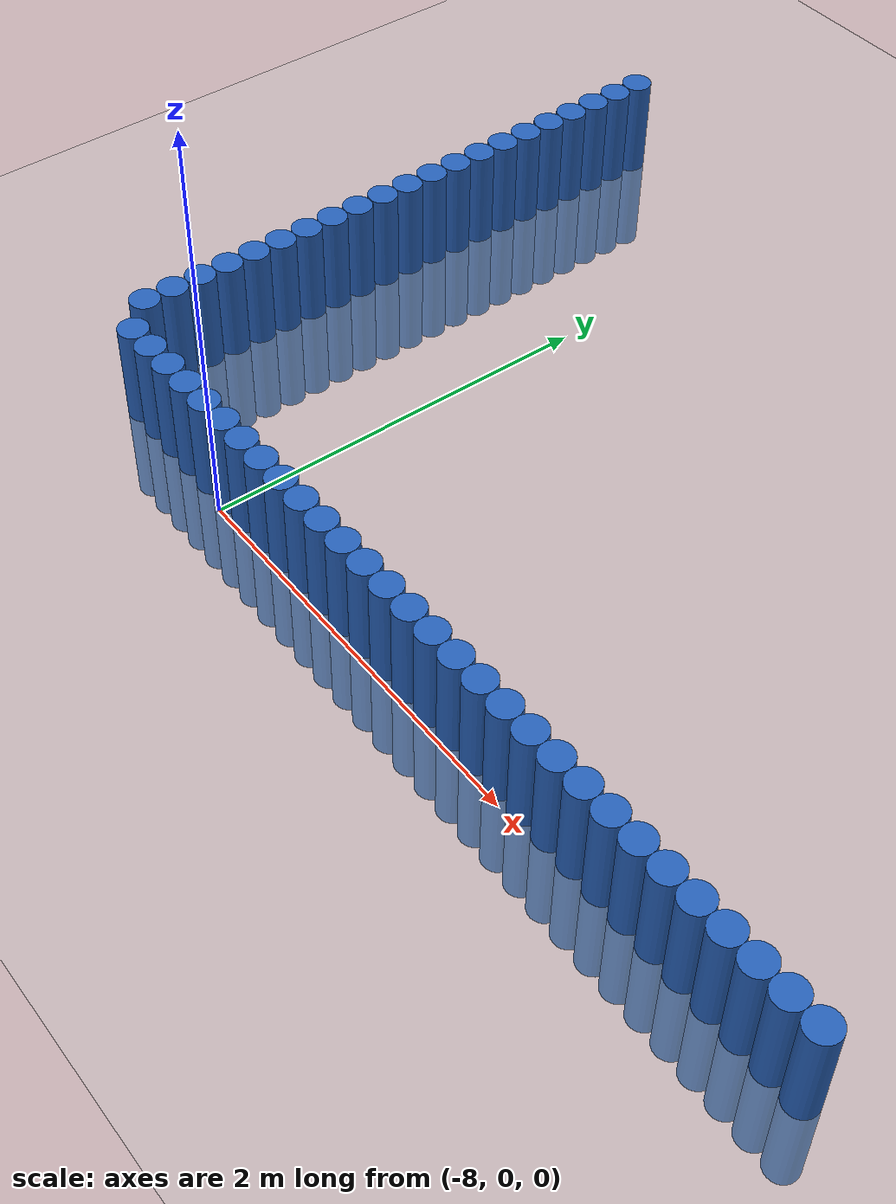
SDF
<sdf version="1.6">
 <world name="default">
  <model name="ground_plane">
   <static>1</static>
   <link name="link">
    <collision name="collision">
     <geometry><plane><normal>0 0 1</normal><size>100 100</size></plane></geometry>
     <surface><friction><ode><mu>100</mu><mu2>50</mu2></ode></friction></surface>
    </collision>
    <visual name="visual">
     <cast_shadows>0</cast_shadows>
     <geometry><plane><normal>0 0 1</normal><size>100 100</size></plane></geometry>
     <material>
      <script><uri>file://media/materials/scripts/gazebo.material</uri><name>Gazebo/Grey</name></script>
     </material>
    </visual>
   </link>
  </model>
  <model name="unit_cylinder_29">
   <static>1</static>
   <pose>-4.425000 0.075000 0.000000 0.000000 0.000000 0.000000</pose>
   <link name="link">
    <inertial>
     <mass>1</mass>
     <inertia><ixx>0.145833</ixx><ixy>0</ixy><ixz>0</ixz><iyy>0.145833</iyy><iyz>0</iyz><izz>0.125</izz></inertia>
    </inertial>
    <collision name="collision">
     <geometry><cylinder><radius>0.075000</radius><length>1</length></cylinder></geometry>
    </collision>
    <visual name="visual">
     <geometry><cylinder><radius>0.075000</radius><length>1</length></cylinder></geometry>
     <material>
      <ambient>0.152000 0.379000 0.720000 1</ambient>
      <diffuse>0.152000 0.379000 0.720000 1</diffuse>
     </material>
     <material>
      <script><name>Gazebo/Grey</name><uri>file://media/materials/scripts/gazebo.material</uri></script>
     </material>
    </visual>
   </link>
  </model>
  <model name="unit_cylinder_30">
   <static>1</static>
   <pose>-4.575000 0.075000 0.000000 0.000000 0.000000 0.000000</pose>
   <link name="link">
    <inertial>
     <mass>1</mass>
     <inertia><ixx>0.145833</ixx><ixy>0</ixy><ixz>0</ixz><iyy>0.145833</iyy><iyz>0</iyz><izz>0.125</izz></inertia>
    </inertial>
    <collision name="collision">
     <geometry><cylinder><radius>0.075000</radius><length>1</length></cylinder></geometry>
    </collision>
    <visual name="visual">
     <geometry><cylinder><radius>0.075000</radius><length>1</length></cylinder></geometry>
     <material>
      <ambient>0.152000 0.379000 0.720000 1</ambient>
      <diffuse>0.152000 0.379000 0.720000 1</diffuse>
     </material>
     <material>
      <script><name>Gazebo/Grey</name><uri>file://media/materials/scripts/gazebo.material</uri></script>
     </material>
    </visual>
   </link>
  </model>
  <model name="unit_cylinder_31">
   <static>1</static>
   <pose>-4.725000 0.075000 0.000000 0.000000 0.000000 0.000000</pose>
   <link name="link">
    <inertial>
     <mass>1</mass>
     <inertia><ixx>0.145833</ixx><ixy>0</ixy><ixz>0</ixz><iyy>0.145833</iyy><iyz>0</iyz><izz>0.125</izz></inertia>
    </inertial>
    <collision name="collision">
     <geometry><cylinder><radius>0.075000</radius><length>1</length></cylinder></geometry>
    </collision>
    <visual name="visual">
     <geometry><cylinder><radius>0.075000</radius><length>1</length></cylinder></geometry>
     <material>
      <ambient>0.152000 0.379000 0.720000 1</ambient>
      <diffuse>0.152000 0.379000 0.720000 1</diffuse>
     </material>
     <material>
      <script><name>Gazebo/Grey</name><uri>file://media/materials/scripts/gazebo.material</uri></script>
     </material>
    </visual>
   </link>
  </model>
  <model name="unit_cylinder_32">
   <static>1</static>
   <pose>-4.875000 0.075000 0.000000 0.000000 0.000000 0.000000</pose>
   <link name="link">
    <inertial>
     <mass>1</mass>
     <inertia><ixx>0.145833</ixx><ixy>0</ixy><ixz>0</ixz><iyy>0.145833</iyy><iyz>0</iyz><izz>0.125</izz></inertia>
    </inertial>
    <collision name="collision">
     <geometry><cylinder><radius>0.075000</radius><length>1</length></cylinder></geometry>
    </collision>
    <visual name="visual">
     <geometry><cylinder><radius>0.075000</radius><length>1</length></cylinder></geometry>
     <material>
      <ambient>0.152000 0.379000 0.720000 1</ambient>
      <diffuse>0.152000 0.379000 0.720000 1</diffuse>
     </material>
     <material>
      <script><name>Gazebo/Grey</name><uri>file://media/materials/scripts/gazebo.material</uri></script>
     </material>
    </visual>
   </link>
  </model>
  <model name="unit_cylinder_33">
   <static>1</static>
   <pose>-5.025000 0.075000 0.000000 0.000000 0.000000 0.000000</pose>
   <link name="link">
    <inertial>
     <mass>1</mass>
     <inertia><ixx>0.145833</ixx><ixy>0</ixy><ixz>0</ixz><iyy>0.145833</iyy><iyz>0</iyz><izz>0.125</izz></inertia>
    </inertial>
    <collision name="collision">
     <geometry><cylinder><radius>0.075000</radius><length>1</length></cylinder></geometry>
    </collision>
    <visual name="visual">
     <geometry><cylinder><radius>0.075000</radius><length>1</length></cylinder></geometry>
     <material>
      <ambient>0.152000 0.379000 0.720000 1</ambient>
      <diffuse>0.152000 0.379000 0.720000 1</diffuse>
     </material>
     <material>
      <script><name>Gazebo/Grey</name><uri>file://media/materials/scripts/gazebo.material</uri></script>
     </material>
    </visual>
   </link>
  </model>
  <model name="unit_cylinder_34">
   <static>1</static>
   <pose>-5.175000 0.075000 0.000000 0.000000 0.000000 0.000000</pose>
   <link name="link">
    <inertial>
     <mass>1</mass>
     <inertia><ixx>0.145833</ixx><ixy>0</ixy><ixz>0</ixz><iyy>0.145833</iyy><iyz>0</iyz><izz>0.125</izz></inertia>
    </inertial>
    <collision name="collision">
     <geometry><cylinder><radius>0.075000</radius><length>1</length></cylinder></geometry>
    </collision>
    <visual name="visual">
     <geometry><cylinder><radius>0.075000</radius><length>1</length></cylinder></geometry>
     <material>
      <ambient>0.152000 0.379000 0.720000 1</ambient>
      <diffuse>0.152000 0.379000 0.720000 1</diffuse>
     </material>
     <material>
      <script><name>Gazebo/Grey</name><uri>file://media/materials/scripts/gazebo.material</uri></script>
     </material>
    </visual>
   </link>
  </model>
  <model name="unit_cylinder_35">
   <static>1</static>
   <pose>-5.325000 0.075000 0.000000 0.000000 0.000000 0.000000</pose>
   <link name="link">
    <inertial>
     <mass>1</mass>
     <inertia><ixx>0.145833</ixx><ixy>0</ixy><ixz>0</ixz><iyy>0.145833</iyy><iyz>0</iyz><izz>0.125</izz></inertia>
    </inertial>
    <collision name="collision">
     <geometry><cylinder><radius>0.075000</radius><length>1</length></cylinder></geometry>
    </collision>
    <visual name="visual">
     <geometry><cylinder><radius>0.075000</radius><length>1</length></cylinder></geometry>
     <material>
      <ambient>0.152000 0.379000 0.720000 1</ambient>
      <diffuse>0.152000 0.379000 0.720000 1</diffuse>
     </material>
     <material>
      <script><name>Gazebo/Grey</name><uri>file://media/materials/scripts/gazebo.material</uri></script>
     </material>
    </visual>
   </link>
  </model>
  <model name="unit_cylinder_36">
   <static>1</static>
   <pose>-5.475000 0.075000 0.000000 0.000000 0.000000 0.000000</pose>
   <link name="link">
    <inertial>
     <mass>1</mass>
     <inertia><ixx>0.145833</ixx><ixy>0</ixy><ixz>0</ixz><iyy>0.145833</iyy><iyz>0</iyz><izz>0.125</izz></inertia>
    </inertial>
    <collision name="collision">
     <geometry><cylinder><radius>0.075000</radius><length>1</length></cylinder></geometry>
    </collision>
    <visual name="visual">
     <geometry><cylinder><radius>0.075000</radius><length>1</length></cylinder></geometry>
     <material>
      <ambient>0.152000 0.379000 0.720000 1</ambient>
      <diffuse>0.152000 0.379000 0.720000 1</diffuse>
     </material>
     <material>
      <script><name>Gazebo/Grey</name><uri>file://media/materials/scripts/gazebo.material</uri></script>
     </material>
    </visual>
   </link>
  </model>
  <model name="unit_cylinder_37">
   <static>1</static>
   <pose>-5.625000 0.075000 0.000000 0.000000 0.000000 0.000000</pose>
   <link name="link">
    <inertial>
     <mass>1</mass>
     <inertia><ixx>0.145833</ixx><ixy>0</ixy><ixz>0</ixz><iyy>0.145833</iyy><iyz>0</iyz><izz>0.125</izz></inertia>
    </inertial>
    <collision name="collision">
     <geometry><cylinder><radius>0.075000</radius><length>1</length></cylinder></geometry>
    </collision>
    <visual name="visual">
     <geometry><cylinder><radius>0.075000</radius><length>1</length></cylinder></geometry>
     <material>
      <ambient>0.152000 0.379000 0.720000 1</ambient>
      <diffuse>0.152000 0.379000 0.720000 1</diffuse>
     </material>
     <material>
      <script><name>Gazebo/Grey</name><uri>file://media/materials/scripts/gazebo.material</uri></script>
     </material>
    </visual>
   </link>
  </model>
  <model name="unit_cylinder_38">
   <static>1</static>
   <pose>-5.775000 0.075000 0.000000 0.000000 0.000000 0.000000</pose>
   <link name="link">
    <inertial>
     <mass>1</mass>
     <inertia><ixx>0.145833</ixx><ixy>0</ixy><ixz>0</ixz><iyy>0.145833</iyy><iyz>0</iyz><izz>0.125</izz></inertia>
    </inertial>
    <collision name="collision">
     <geometry><cylinder><radius>0.075000</radius><length>1</length></cylinder></geometry>
    </collision>
    <visual name="visual">
     <geometry><cylinder><radius>0.075000</radius><length>1</length></cylinder></geometry>
     <material>
      <ambient>0.152000 0.379000 0.720000 1</ambient>
      <diffuse>0.152000 0.379000 0.720000 1</diffuse>
     </material>
     <material>
      <script><name>Gazebo/Grey</name><uri>file://media/materials/scripts/gazebo.material</uri></script>
     </material>
    </visual>
   </link>
  </model>
  <model name="unit_cylinder_39">
   <static>1</static>
   <pose>-5.925000 0.075000 0.000000 0.000000 0.000000 0.000000</pose>
   <link name="link">
    <inertial>
     <mass>1</mass>
     <inertia><ixx>0.145833</ixx><ixy>0</ixy><ixz>0</ixz><iyy>0.145833</iyy><iyz>0</iyz><izz>0.125</izz></inertia>
    </inertial>
    <collision name="collision">
     <geometry><cylinder><radius>0.075000</radius><length>1</length></cylinder></geometry>
    </collision>
    <visual name="visual">
     <geometry><cylinder><radius>0.075000</radius><length>1</length></cylinder></geometry>
     <material>
      <ambient>0.152000 0.379000 0.720000 1</ambient>
      <diffuse>0.152000 0.379000 0.720000 1</diffuse>
     </material>
     <material>
      <script><name>Gazebo/Grey</name><uri>file://media/materials/scripts/gazebo.material</uri></script>
     </material>
    </visual>
   </link>
  </model>
  <model name="unit_cylinder_40">
   <static>1</static>
   <pose>-6.075000 0.075000 0.000000 0.000000 0.000000 0.000000</pose>
   <link name="link">
    <inertial>
     <mass>1</mass>
     <inertia><ixx>0.145833</ixx><ixy>0</ixy><ixz>0</ixz><iyy>0.145833</iyy><iyz>0</iyz><izz>0.125</izz></inertia>
    </inertial>
    <collision name="collision">
     <geometry><cylinder><radius>0.075000</radius><length>1</length></cylinder></geometry>
    </collision>
    <visual name="visual">
     <geometry><cylinder><radius>0.075000</radius><length>1</length></cylinder></geometry>
     <material>
      <ambient>0.152000 0.379000 0.720000 1</ambient>
      <diffuse>0.152000 0.379000 0.720000 1</diffuse>
     </material>
     <material>
      <script><name>Gazebo/Grey</name><uri>file://media/materials/scripts/gazebo.material</uri></script>
     </material>
    </visual>
   </link>
  </model>
  <model name="unit_cylinder_41">
   <static>1</static>
   <pose>-6.225000 0.075000 0.000000 0.000000 0.000000 0.000000</pose>
   <link name="link">
    <inertial>
     <mass>1</mass>
     <inertia><ixx>0.145833</ixx><ixy>0</ixy><ixz>0</ixz><iyy>0.145833</iyy><iyz>0</iyz><izz>0.125</izz></inertia>
    </inertial>
    <collision name="collision">
     <geometry><cylinder><radius>0.075000</radius><length>1</length></cylinder></geometry>
    </collision>
    <visual name="visual">
     <geometry><cylinder><radius>0.075000</radius><length>1</length></cylinder></geometry>
     <material>
      <ambient>0.152000 0.379000 0.720000 1</ambient>
      <diffuse>0.152000 0.379000 0.720000 1</diffuse>
     </material>
     <material>
      <script><name>Gazebo/Grey</name><uri>file://media/materials/scripts/gazebo.material</uri></script>
     </material>
    </visual>
   </link>
  </model>
  <model name="unit_cylinder_42">
   <static>1</static>
   <pose>-6.375000 0.075000 0.000000 0.000000 0.000000 0.000000</pose>
   <link name="link">
    <inertial>
     <mass>1</mass>
     <inertia><ixx>0.145833</ixx><ixy>0</ixy><ixz>0</ixz><iyy>0.145833</iyy><iyz>0</iyz><izz>0.125</izz></inertia>
    </inertial>
    <collision name="collision">
     <geometry><cylinder><radius>0.075000</radius><length>1</length></cylinder></geometry>
    </collision>
    <visual name="visual">
     <geometry><cylinder><radius>0.075000</radius><length>1</length></cylinder></geometry>
     <material>
      <ambient>0.152000 0.379000 0.720000 1</ambient>
      <diffuse>0.152000 0.379000 0.720000 1</diffuse>
     </material>
     <material>
      <script><name>Gazebo/Grey</name><uri>file://media/materials/scripts/gazebo.material</uri></script>
     </material>
    </visual>
   </link>
  </model>
  <model name="unit_cylinder_43">
   <static>1</static>
   <pose>-6.525000 0.075000 0.000000 0.000000 0.000000 0.000000</pose>
   <link name="link">
    <inertial>
     <mass>1</mass>
     <inertia><ixx>0.145833</ixx><ixy>0</ixy><ixz>0</ixz><iyy>0.145833</iyy><iyz>0</iyz><izz>0.125</izz></inertia>
    </inertial>
    <collision name="collision">
     <geometry><cylinder><radius>0.075000</radius><length>1</length></cylinder></geometry>
    </collision>
    <visual name="visual">
     <geometry><cylinder><radius>0.075000</radius><length>1</length></cylinder></geometry>
     <material>
      <ambient>0.152000 0.379000 0.720000 1</ambient>
      <diffuse>0.152000 0.379000 0.720000 1</diffuse>
     </material>
     <material>
      <script><name>Gazebo/Grey</name><uri>file://media/materials/scripts/gazebo.material</uri></script>
     </material>
    </visual>
   </link>
  </model>
  <model name="unit_cylinder_44">
   <static>1</static>
   <pose>-6.675000 0.075000 0.000000 0.000000 0.000000 0.000000</pose>
   <link name="link">
    <inertial>
     <mass>1</mass>
     <inertia><ixx>0.145833</ixx><ixy>0</ixy><ixz>0</ixz><iyy>0.145833</iyy><iyz>0</iyz><izz>0.125</izz></inertia>
    </inertial>
    <collision name="collision">
     <geometry><cylinder><radius>0.075000</radius><length>1</length></cylinder></geometry>
    </collision>
    <visual name="visual">
     <geometry><cylinder><radius>0.075000</radius><length>1</length></cylinder></geometry>
     <material>
      <ambient>0.152000 0.379000 0.720000 1</ambient>
      <diffuse>0.152000 0.379000 0.720000 1</diffuse>
     </material>
     <material>
      <script><name>Gazebo/Grey</name><uri>file://media/materials/scripts/gazebo.material</uri></script>
     </material>
    </visual>
   </link>
  </model>
  <model name="unit_cylinder_45">
   <static>1</static>
   <pose>-6.825000 0.075000 0.000000 0.000000 0.000000 0.000000</pose>
   <link name="link">
    <inertial>
     <mass>1</mass>
     <inertia><ixx>0.145833</ixx><ixy>0</ixy><ixz>0</ixz><iyy>0.145833</iyy><iyz>0</iyz><izz>0.125</izz></inertia>
    </inertial>
    <collision name="collision">
     <geometry><cylinder><radius>0.075000</radius><length>1</length></cylinder></geometry>
    </collision>
    <visual name="visual">
     <geometry><cylinder><radius>0.075000</radius><length>1</length></cylinder></geometry>
     <material>
      <ambient>0.152000 0.379000 0.720000 1</ambient>
      <diffuse>0.152000 0.379000 0.720000 1</diffuse>
     </material>
     <material>
      <script><name>Gazebo/Grey</name><uri>file://media/materials/scripts/gazebo.material</uri></script>
     </material>
    </visual>
   </link>
  </model>
  <model name="unit_cylinder_46">
   <static>1</static>
   <pose>-6.975000 0.075000 0.000000 0.000000 0.000000 0.000000</pose>
   <link name="link">
    <inertial>
     <mass>1</mass>
     <inertia><ixx>0.145833</ixx><ixy>0</ixy><ixz>0</ixz><iyy>0.145833</iyy><iyz>0</iyz><izz>0.125</izz></inertia>
    </inertial>
    <collision name="collision">
     <geometry><cylinder><radius>0.075000</radius><length>1</length></cylinder></geometry>
    </collision>
    <visual name="visual">
     <geometry><cylinder><radius>0.075000</radius><length>1</length></cylinder></geometry>
     <material>
      <ambient>0.152000 0.379000 0.720000 1</ambient>
      <diffuse>0.152000 0.379000 0.720000 1</diffuse>
     </material>
     <material>
      <script><name>Gazebo/Grey</name><uri>file://media/materials/scripts/gazebo.material</uri></script>
     </material>
    </visual>
   </link>
  </model>
  <model name="unit_cylinder_47">
   <static>1</static>
   <pose>-7.125000 0.075000 0.000000 0.000000 0.000000 0.000000</pose>
   <link name="link">
    <inertial>
     <mass>1</mass>
     <inertia><ixx>0.145833</ixx><ixy>0</ixy><ixz>0</ixz><iyy>0.145833</iyy><iyz>0</iyz><izz>0.125</izz></inertia>
    </inertial>
    <collision name="collision">
     <geometry><cylinder><radius>0.075000</radius><length>1</length></cylinder></geometry>
    </collision>
    <visual name="visual">
     <geometry><cylinder><radius>0.075000</radius><length>1</length></cylinder></geometry>
     <material>
      <ambient>0.152000 0.379000 0.720000 1</ambient>
      <diffuse>0.152000 0.379000 0.720000 1</diffuse>
     </material>
     <material>
      <script><name>Gazebo/Grey</name><uri>file://media/materials/scripts/gazebo.material</uri></script>
     </material>
    </visual>
   </link>
  </model>
  <model name="unit_cylinder_48">
   <static>1</static>
   <pose>-7.275000 0.075000 0.000000 0.000000 0.000000 0.000000</pose>
   <link name="link">
    <inertial>
     <mass>1</mass>
     <inertia><ixx>0.145833</ixx><ixy>0</ixy><ixz>0</ixz><iyy>0.145833</iyy><iyz>0</iyz><izz>0.125</izz></inertia>
    </inertial>
    <collision name="collision">
     <geometry><cylinder><radius>0.075000</radius><length>1</length></cylinder></geometry>
    </collision>
    <visual name="visual">
     <geometry><cylinder><radius>0.075000</radius><length>1</length></cylinder></geometry>
     <material>
      <ambient>0.152000 0.379000 0.720000 1</ambient>
      <diffuse>0.152000 0.379000 0.720000 1</diffuse>
     </material>
     <material>
      <script><name>Gazebo/Grey</name><uri>file://media/materials/scripts/gazebo.material</uri></script>
     </material>
    </visual>
   </link>
  </model>
  <model name="unit_cylinder_49">
   <static>1</static>
   <pose>-7.425000 0.075000 0.000000 0.000000 0.000000 0.000000</pose>
   <link name="link">
    <inertial>
     <mass>1</mass>
     <inertia><ixx>0.145833</ixx><ixy>0</ixy><ixz>0</ixz><iyy>0.145833</iyy><iyz>0</iyz><izz>0.125</izz></inertia>
    </inertial>
    <collision name="collision">
     <geometry><cylinder><radius>0.075000</radius><length>1</length></cylinder></geometry>
    </collision>
    <visual name="visual">
     <geometry><cylinder><radius>0.075000</radius><length>1</length></cylinder></geometry>
     <material>
      <ambient>0.152000 0.379000 0.720000 1</ambient>
      <diffuse>0.152000 0.379000 0.720000 1</diffuse>
     </material>
     <material>
      <script><name>Gazebo/Grey</name><uri>file://media/materials/scripts/gazebo.material</uri></script>
     </material>
    </visual>
   </link>
  </model>
  <model name="unit_cylinder_50">
   <static>1</static>
   <pose>-7.575000 0.075000 0.000000 0.000000 0.000000 0.000000</pose>
   <link name="link">
    <inertial>
     <mass>1</mass>
     <inertia><ixx>0.145833</ixx><ixy>0</ixy><ixz>0</ixz><iyy>0.145833</iyy><iyz>0</iyz><izz>0.125</izz></inertia>
    </inertial>
    <collision name="collision">
     <geometry><cylinder><radius>0.075000</radius><length>1</length></cylinder></geometry>
    </collision>
    <visual name="visual">
     <geometry><cylinder><radius>0.075000</radius><length>1</length></cylinder></geometry>
     <material>
      <ambient>0.152000 0.379000 0.720000 1</ambient>
      <diffuse>0.152000 0.379000 0.720000 1</diffuse>
     </material>
     <material>
      <script><name>Gazebo/Grey</name><uri>file://media/materials/scripts/gazebo.material</uri></script>
     </material>
    </visual>
   </link>
  </model>
  <model name="unit_cylinder_51">
   <static>1</static>
   <pose>-7.725000 0.075000 0.000000 0.000000 0.000000 0.000000</pose>
   <link name="link">
    <inertial>
     <mass>1</mass>
     <inertia><ixx>0.145833</ixx><ixy>0</ixy><ixz>0</ixz><iyy>0.145833</iyy><iyz>0</iyz><izz>0.125</izz></inertia>
    </inertial>
    <collision name="collision">
     <geometry><cylinder><radius>0.075000</radius><length>1</length></cylinder></geometry>
    </collision>
    <visual name="visual">
     <geometry><cylinder><radius>0.075000</radius><length>1</length></cylinder></geometry>
     <material>
      <ambient>0.152000 0.379000 0.720000 1</ambient>
      <diffuse>0.152000 0.379000 0.720000 1</diffuse>
     </material>
     <material>
      <script><name>Gazebo/Grey</name><uri>file://media/materials/scripts/gazebo.material</uri></script>
     </material>
    </visual>
   </link>
  </model>
  <model name="unit_cylinder_52">
   <static>1</static>
   <pose>-7.875000 0.075000 0.000000 0.000000 0.000000 0.000000</pose>
   <link name="link">
    <inertial>
     <mass>1</mass>
     <inertia><ixx>0.145833</ixx><ixy>0</ixy><ixz>0</ixz><iyy>0.145833</iyy><iyz>0</iyz><izz>0.125</izz></inertia>
    </inertial>
    <collision name="collision">
     <geometry><cylinder><radius>0.075000</radius><length>1</length></cylinder></geometry>
    </collision>
    <visual name="visual">
     <geometry><cylinder><radius>0.075000</radius><length>1</length></cylinder></geometry>
     <material>
      <ambient>0.152000 0.379000 0.720000 1</ambient>
      <diffuse>0.152000 0.379000 0.720000 1</diffuse>
     </material>
     <material>
      <script><name>Gazebo/Grey</name><uri>file://media/materials/scripts/gazebo.material</uri></script>
     </material>
    </visual>
   </link>
  </model>
  <model name="unit_cylinder_53">
   <static>1</static>
   <pose>-8.025000 0.075000 0.000000 0.000000 0.000000 0.000000</pose>
   <link name="link">
    <inertial>
     <mass>1</mass>
     <inertia><ixx>0.145833</ixx><ixy>0</ixy><ixz>0</ixz><iyy>0.145833</iyy><iyz>0</iyz><izz>0.125</izz></inertia>
    </inertial>
    <collision name="collision">
     <geometry><cylinder><radius>0.075000</radius><length>1</length></cylinder></geometry>
    </collision>
    <visual name="visual">
     <geometry><cylinder><radius>0.075000</radius><length>1</length></cylinder></geometry>
     <material>
      <ambient>0.152000 0.379000 0.720000 1</ambient>
      <diffuse>0.152000 0.379000 0.720000 1</diffuse>
     </material>
     <material>
      <script><name>Gazebo/Grey</name><uri>file://media/materials/scripts/gazebo.material</uri></script>
     </material>
    </visual>
   </link>
  </model>
  <model name="unit_cylinder_54">
   <static>1</static>
   <pose>-8.175000 0.075000 0.000000 0.000000 0.000000 0.000000</pose>
   <link name="link">
    <inertial>
     <mass>1</mass>
     <inertia><ixx>0.145833</ixx><ixy>0</ixy><ixz>0</ixz><iyy>0.145833</iyy><iyz>0</iyz><izz>0.125</izz></inertia>
    </inertial>
    <collision name="collision">
     <geometry><cylinder><radius>0.075000</radius><length>1</length></cylinder></geometry>
    </collision>
    <visual name="visual">
     <geometry><cylinder><radius>0.075000</radius><length>1</length></cylinder></geometry>
     <material>
      <ambient>0.152000 0.379000 0.720000 1</ambient>
      <diffuse>0.152000 0.379000 0.720000 1</diffuse>
     </material>
     <material>
      <script><name>Gazebo/Grey</name><uri>file://media/materials/scripts/gazebo.material</uri></script>
     </material>
    </visual>
   </link>
  </model>
  <model name="unit_cylinder_55">
   <static>1</static>
   <pose>-8.325000 0.075000 0.000000 0.000000 0.000000 0.000000</pose>
   <link name="link">
    <inertial>
     <mass>1</mass>
     <inertia><ixx>0.145833</ixx><ixy>0</ixy><ixz>0</ixz><iyy>0.145833</iyy><iyz>0</iyz><izz>0.125</izz></inertia>
    </inertial>
    <collision name="collision">
     <geometry><cylinder><radius>0.075000</radius><length>1</length></cylinder></geometry>
    </collision>
    <visual name="visual">
     <geometry><cylinder><radius>0.075000</radius><length>1</length></cylinder></geometry>
     <material>
      <ambient>0.152000 0.379000 0.720000 1</ambient>
      <diffuse>0.152000 0.379000 0.720000 1</diffuse>
     </material>
     <material>
      <script><name>Gazebo/Grey</name><uri>file://media/materials/scripts/gazebo.material</uri></script>
     </material>
    </visual>
   </link>
  </model>
  <model name="unit_cylinder_56">
   <static>1</static>
   <pose>-8.475000 0.075000 0.000000 0.000000 0.000000 0.000000</pose>
   <link name="link">
    <inertial>
     <mass>1</mass>
     <inertia><ixx>0.145833</ixx><ixy>0</ixy><ixz>0</ixz><iyy>0.145833</iyy><iyz>0</iyz><izz>0.125</izz></inertia>
    </inertial>
    <collision name="collision">
     <geometry><cylinder><radius>0.075000</radius><length>1</length></cylinder></geometry>
    </collision>
    <visual name="visual">
     <geometry><cylinder><radius>0.075000</radius><length>1</length></cylinder></geometry>
     <material>
      <ambient>0.152000 0.379000 0.720000 1</ambient>
      <diffuse>0.152000 0.379000 0.720000 1</diffuse>
     </material>
     <material>
      <script><name>Gazebo/Grey</name><uri>file://media/materials/scripts/gazebo.material</uri></script>
     </material>
    </visual>
   </link>
  </model>
  <model name="unit_cylinder_57">
   <static>1</static>
   <pose>-8.625000 0.075000 0.000000 0.000000 0.000000 0.000000</pose>
   <link name="link">
    <inertial>
     <mass>1</mass>
     <inertia><ixx>0.145833</ixx><ixy>0</ixy><ixz>0</ixz><iyy>0.145833</iyy><iyz>0</iyz><izz>0.125</izz></inertia>
    </inertial>
    <collision name="collision">
     <geometry><cylinder><radius>0.075000</radius><length>1</length></cylinder></geometry>
    </collision>
    <visual name="visual">
     <geometry><cylinder><radius>0.075000</radius><length>1</length></cylinder></geometry>
     <material>
      <ambient>0.152000 0.379000 0.720000 1</ambient>
      <diffuse>0.152000 0.379000 0.720000 1</diffuse>
     </material>
     <material>
      <script><name>Gazebo/Grey</name><uri>file://media/materials/scripts/gazebo.material</uri></script>
     </material>
    </visual>
   </link>
  </model>
  <model name="unit_cylinder_58">
   <static>1</static>
   <pose>-8.775000 0.075000 0.000000 0.000000 0.000000 0.000000</pose>
   <link name="link">
    <inertial>
     <mass>1</mass>
     <inertia><ixx>0.145833</ixx><ixy>0</ixy><ixz>0</ixz><iyy>0.145833</iyy><iyz>0</iyz><izz>0.125</izz></inertia>
    </inertial>
    <collision name="collision">
     <geometry><cylinder><radius>0.075000</radius><length>1</length></cylinder></geometry>
    </collision>
    <visual name="visual">
     <geometry><cylinder><radius>0.075000</radius><length>1</length></cylinder></geometry>
     <material>
      <ambient>0.152000 0.379000 0.720000 1</ambient>
      <diffuse>0.152000 0.379000 0.720000 1</diffuse>
     </material>
     <material>
      <script><name>Gazebo/Grey</name><uri>file://media/materials/scripts/gazebo.material</uri></script>
     </material>
    </visual>
   </link>
  </model>
  <model name="unit_cylinder_60">
   <static>1</static>
   <pose>-8.925000 0.225000 0.000000 0.000000 0.000000 0.000000</pose>
   <link name="link">
    <inertial>
     <mass>1</mass>
     <inertia><ixx>0.145833</ixx><ixy>0</ixy><ixz>0</ixz><iyy>0.145833</iyy><iyz>0</iyz><izz>0.125</izz></inertia>
    </inertial>
    <collision name="collision">
     <geometry><cylinder><radius>0.075000</radius><length>1</length></cylinder></geometry>
    </collision>
    <visual name="visual">
     <geometry><cylinder><radius>0.075000</radius><length>1</length></cylinder></geometry>
     <material>
      <ambient>0.152000 0.379000 0.720000 1</ambient>
      <diffuse>0.152000 0.379000 0.720000 1</diffuse>
     </material>
     <material>
      <script><name>Gazebo/Grey</name><uri>file://media/materials/scripts/gazebo.material</uri></script>
     </material>
    </visual>
   </link>
  </model>
  <model name="unit_cylinder_62">
   <static>1</static>
   <pose>-8.925000 0.375000 0.000000 0.000000 0.000000 0.000000</pose>
   <link name="link">
    <inertial>
     <mass>1</mass>
     <inertia><ixx>0.145833</ixx><ixy>0</ixy><ixz>0</ixz><iyy>0.145833</iyy><iyz>0</iyz><izz>0.125</izz></inertia>
    </inertial>
    <collision name="collision">
     <geometry><cylinder><radius>0.075000</radius><length>1</length></cylinder></geometry>
    </collision>
    <visual name="visual">
     <geometry><cylinder><radius>0.075000</radius><length>1</length></cylinder></geometry>
     <material>
      <ambient>0.152000 0.379000 0.720000 1</ambient>
      <diffuse>0.152000 0.379000 0.720000 1</diffuse>
     </material>
     <material>
      <script><name>Gazebo/Grey</name><uri>file://media/materials/scripts/gazebo.material</uri></script>
     </material>
    </visual>
   </link>
  </model>
  <model name="unit_cylinder_64">
   <static>1</static>
   <pose>-8.925000 0.525000 0.000000 0.000000 0.000000 0.000000</pose>
   <link name="link">
    <inertial>
     <mass>1</mass>
     <inertia><ixx>0.145833</ixx><ixy>0</ixy><ixz>0</ixz><iyy>0.145833</iyy><iyz>0</iyz><izz>0.125</izz></inertia>
    </inertial>
    <collision name="collision">
     <geometry><cylinder><radius>0.075000</radius><length>1</length></cylinder></geometry>
    </collision>
    <visual name="visual">
     <geometry><cylinder><radius>0.075000</radius><length>1</length></cylinder></geometry>
     <material>
      <ambient>0.152000 0.379000 0.720000 1</ambient>
      <diffuse>0.152000 0.379000 0.720000 1</diffuse>
     </material>
     <material>
      <script><name>Gazebo/Grey</name><uri>file://media/materials/scripts/gazebo.material</uri></script>
     </material>
    </visual>
   </link>
  </model>
  <model name="unit_cylinder_66">
   <static>1</static>
   <pose>-8.925000 0.675000 0.000000 0.000000 0.000000 0.000000</pose>
   <link name="link">
    <inertial>
     <mass>1</mass>
     <inertia><ixx>0.145833</ixx><ixy>0</ixy><ixz>0</ixz><iyy>0.145833</iyy><iyz>0</iyz><izz>0.125</izz></inertia>
    </inertial>
    <collision name="collision">
     <geometry><cylinder><radius>0.075000</radius><length>1</length></cylinder></geometry>
    </collision>
    <visual name="visual">
     <geometry><cylinder><radius>0.075000</radius><length>1</length></cylinder></geometry>
     <material>
      <ambient>0.152000 0.379000 0.720000 1</ambient>
      <diffuse>0.152000 0.379000 0.720000 1</diffuse>
     </material>
     <material>
      <script><name>Gazebo/Grey</name><uri>file://media/materials/scripts/gazebo.material</uri></script>
     </material>
    </visual>
   </link>
  </model>
  <model name="unit_cylinder_68">
   <static>1</static>
   <pose>-8.925000 0.825000 0.000000 0.000000 0.000000 0.000000</pose>
   <link name="link">
    <inertial>
     <mass>1</mass>
     <inertia><ixx>0.145833</ixx><ixy>0</ixy><ixz>0</ixz><iyy>0.145833</iyy><iyz>0</iyz><izz>0.125</izz></inertia>
    </inertial>
    <collision name="collision">
     <geometry><cylinder><radius>0.075000</radius><length>1</length></cylinder></geometry>
    </collision>
    <visual name="visual">
     <geometry><cylinder><radius>0.075000</radius><length>1</length></cylinder></geometry>
     <material>
      <ambient>0.152000 0.379000 0.720000 1</ambient>
      <diffuse>0.152000 0.379000 0.720000 1</diffuse>
     </material>
     <material>
      <script><name>Gazebo/Grey</name><uri>file://media/materials/scripts/gazebo.material</uri></script>
     </material>
    </visual>
   </link>
  </model>
  <model name="unit_cylinder_70">
   <static>1</static>
   <pose>-8.925000 0.975000 0.000000 0.000000 0.000000 0.000000</pose>
   <link name="link">
    <inertial>
     <mass>1</mass>
     <inertia><ixx>0.145833</ixx><ixy>0</ixy><ixz>0</ixz><iyy>0.145833</iyy><iyz>0</iyz><izz>0.125</izz></inertia>
    </inertial>
    <collision name="collision">
     <geometry><cylinder><radius>0.075000</radius><length>1</length></cylinder></geometry>
    </collision>
    <visual name="visual">
     <geometry><cylinder><radius>0.075000</radius><length>1</length></cylinder></geometry>
     <material>
      <ambient>0.152000 0.379000 0.720000 1</ambient>
      <diffuse>0.152000 0.379000 0.720000 1</diffuse>
     </material>
     <material>
      <script><name>Gazebo/Grey</name><uri>file://media/materials/scripts/gazebo.material</uri></script>
     </material>
    </visual>
   </link>
  </model>
  <model name="unit_cylinder_72">
   <static>1</static>
   <pose>-8.925000 1.125000 0.000000 0.000000 0.000000 0.000000</pose>
   <link name="link">
    <inertial>
     <mass>1</mass>
     <inertia><ixx>0.145833</ixx><ixy>0</ixy><ixz>0</ixz><iyy>0.145833</iyy><iyz>0</iyz><izz>0.125</izz></inertia>
    </inertial>
    <collision name="collision">
     <geometry><cylinder><radius>0.075000</radius><length>1</length></cylinder></geometry>
    </collision>
    <visual name="visual">
     <geometry><cylinder><radius>0.075000</radius><length>1</length></cylinder></geometry>
     <material>
      <ambient>0.152000 0.379000 0.720000 1</ambient>
      <diffuse>0.152000 0.379000 0.720000 1</diffuse>
     </material>
     <material>
      <script><name>Gazebo/Grey</name><uri>file://media/materials/scripts/gazebo.material</uri></script>
     </material>
    </visual>
   </link>
  </model>
  <model name="unit_cylinder_74">
   <static>1</static>
   <pose>-8.925000 1.275000 0.000000 0.000000 0.000000 0.000000</pose>
   <link name="link">
    <inertial>
     <mass>1</mass>
     <inertia><ixx>0.145833</ixx><ixy>0</ixy><ixz>0</ixz><iyy>0.145833</iyy><iyz>0</iyz><izz>0.125</izz></inertia>
    </inertial>
    <collision name="collision">
     <geometry><cylinder><radius>0.075000</radius><length>1</length></cylinder></geometry>
    </collision>
    <visual name="visual">
     <geometry><cylinder><radius>0.075000</radius><length>1</length></cylinder></geometry>
     <material>
      <ambient>0.152000 0.379000 0.720000 1</ambient>
      <diffuse>0.152000 0.379000 0.720000 1</diffuse>
     </material>
     <material>
      <script><name>Gazebo/Grey</name><uri>file://media/materials/scripts/gazebo.material</uri></script>
     </material>
    </visual>
   </link>
  </model>
  <model name="unit_cylinder_76">
   <static>1</static>
   <pose>-8.925000 1.425000 0.000000 0.000000 0.000000 0.000000</pose>
   <link name="link">
    <inertial>
     <mass>1</mass>
     <inertia><ixx>0.145833</ixx><ixy>0</ixy><ixz>0</ixz><iyy>0.145833</iyy><iyz>0</iyz><izz>0.125</izz></inertia>
    </inertial>
    <collision name="collision">
     <geometry><cylinder><radius>0.075000</radius><length>1</length></cylinder></geometry>
    </collision>
    <visual name="visual">
     <geometry><cylinder><radius>0.075000</radius><length>1</length></cylinder></geometry>
     <material>
      <ambient>0.152000 0.379000 0.720000 1</ambient>
      <diffuse>0.152000 0.379000 0.720000 1</diffuse>
     </material>
     <material>
      <script><name>Gazebo/Grey</name><uri>file://media/materials/scripts/gazebo.material</uri></script>
     </material>
    </visual>
   </link>
  </model>
  <model name="unit_cylinder_78">
   <static>1</static>
   <pose>-8.925000 1.575000 0.000000 0.000000 0.000000 0.000000</pose>
   <link name="link">
    <inertial>
     <mass>1</mass>
     <inertia><ixx>0.145833</ixx><ixy>0</ixy><ixz>0</ixz><iyy>0.145833</iyy><iyz>0</iyz><izz>0.125</izz></inertia>
    </inertial>
    <collision name="collision">
     <geometry><cylinder><radius>0.075000</radius><length>1</length></cylinder></geometry>
    </collision>
    <visual name="visual">
     <geometry><cylinder><radius>0.075000</radius><length>1</length></cylinder></geometry>
     <material>
      <ambient>0.152000 0.379000 0.720000 1</ambient>
      <diffuse>0.152000 0.379000 0.720000 1</diffuse>
     </material>
     <material>
      <script><name>Gazebo/Grey</name><uri>file://media/materials/scripts/gazebo.material</uri></script>
     </material>
    </visual>
   </link>
  </model>
  <model name="unit_cylinder_80">
   <static>1</static>
   <pose>-8.925000 1.725000 0.000000 0.000000 0.000000 0.000000</pose>
   <link name="link">
    <inertial>
     <mass>1</mass>
     <inertia><ixx>0.145833</ixx><ixy>0</ixy><ixz>0</ixz><iyy>0.145833</iyy><iyz>0</iyz><izz>0.125</izz></inertia>
    </inertial>
    <collision name="collision">
     <geometry><cylinder><radius>0.075000</radius><length>1</length></cylinder></geometry>
    </collision>
    <visual name="visual">
     <geometry><cylinder><radius>0.075000</radius><length>1</length></cylinder></geometry>
     <material>
      <ambient>0.152000 0.379000 0.720000 1</ambient>
      <diffuse>0.152000 0.379000 0.720000 1</diffuse>
     </material>
     <material>
      <script><name>Gazebo/Grey</name><uri>file://media/materials/scripts/gazebo.material</uri></script>
     </material>
    </visual>
   </link>
  </model>
  <model name="unit_cylinder_82">
   <static>1</static>
   <pose>-8.925000 1.875000 0.000000 0.000000 0.000000 0.000000</pose>
   <link name="link">
    <inertial>
     <mass>1</mass>
     <inertia><ixx>0.145833</ixx><ixy>0</ixy><ixz>0</ixz><iyy>0.145833</iyy><iyz>0</iyz><izz>0.125</izz></inertia>
    </inertial>
    <collision name="collision">
     <geometry><cylinder><radius>0.075000</radius><length>1</length></cylinder></geometry>
    </collision>
    <visual name="visual">
     <geometry><cylinder><radius>0.075000</radius><length>1</length></cylinder></geometry>
     <material>
      <ambient>0.152000 0.379000 0.720000 1</ambient>
      <diffuse>0.152000 0.379000 0.720000 1</diffuse>
     </material>
     <material>
      <script><name>Gazebo/Grey</name><uri>file://media/materials/scripts/gazebo.material</uri></script>
     </material>
    </visual>
   </link>
  </model>
  <model name="unit_cylinder_84">
   <static>1</static>
   <pose>-8.925000 2.025000 0.000000 0.000000 0.000000 0.000000</pose>
   <link name="link">
    <inertial>
     <mass>1</mass>
     <inertia><ixx>0.145833</ixx><ixy>0</ixy><ixz>0</ixz><iyy>0.145833</iyy><iyz>0</iyz><izz>0.125</izz></inertia>
    </inertial>
    <collision name="collision">
     <geometry><cylinder><radius>0.075000</radius><length>1</length></cylinder></geometry>
    </collision>
    <visual name="visual">
     <geometry><cylinder><radius>0.075000</radius><length>1</length></cylinder></geometry>
     <material>
      <ambient>0.152000 0.379000 0.720000 1</ambient>
      <diffuse>0.152000 0.379000 0.720000 1</diffuse>
     </material>
     <material>
      <script><name>Gazebo/Grey</name><uri>file://media/materials/scripts/gazebo.material</uri></script>
     </material>
    </visual>
   </link>
  </model>
  <model name="unit_cylinder_86">
   <static>1</static>
   <pose>-8.925000 2.175000 0.000000 0.000000 0.000000 0.000000</pose>
   <link name="link">
    <inertial>
     <mass>1</mass>
     <inertia><ixx>0.145833</ixx><ixy>0</ixy><ixz>0</ixz><iyy>0.145833</iyy><iyz>0</iyz><izz>0.125</izz></inertia>
    </inertial>
    <collision name="collision">
     <geometry><cylinder><radius>0.075000</radius><length>1</length></cylinder></geometry>
    </collision>
    <visual name="visual">
     <geometry><cylinder><radius>0.075000</radius><length>1</length></cylinder></geometry>
     <material>
      <ambient>0.152000 0.379000 0.720000 1</ambient>
      <diffuse>0.152000 0.379000 0.720000 1</diffuse>
     </material>
     <material>
      <script><name>Gazebo/Grey</name><uri>file://media/materials/scripts/gazebo.material</uri></script>
     </material>
    </visual>
   </link>
  </model>
  <model name="unit_cylinder_88">
   <static>1</static>
   <pose>-8.925000 2.325000 0.000000 0.000000 0.000000 0.000000</pose>
   <link name="link">
    <inertial>
     <mass>1</mass>
     <inertia><ixx>0.145833</ixx><ixy>0</ixy><ixz>0</ixz><iyy>0.145833</iyy><iyz>0</iyz><izz>0.125</izz></inertia>
    </inertial>
    <collision name="collision">
     <geometry><cylinder><radius>0.075000</radius><length>1</length></cylinder></geometry>
    </collision>
    <visual name="visual">
     <geometry><cylinder><radius>0.075000</radius><length>1</length></cylinder></geometry>
     <material>
      <ambient>0.152000 0.379000 0.720000 1</ambient>
      <diffuse>0.152000 0.379000 0.720000 1</diffuse>
     </material>
     <material>
      <script><name>Gazebo/Grey</name><uri>file://media/materials/scripts/gazebo.material</uri></script>
     </material>
    </visual>
   </link>
  </model>
  <model name="unit_cylinder_90">
   <static>1</static>
   <pose>-8.925000 2.475000 0.000000 0.000000 0.000000 0.000000</pose>
   <link name="link">
    <inertial>
     <mass>1</mass>
     <inertia><ixx>0.145833</ixx><ixy>0</ixy><ixz>0</ixz><iyy>0.145833</iyy><iyz>0</iyz><izz>0.125</izz></inertia>
    </inertial>
    <collision name="collision">
     <geometry><cylinder><radius>0.075000</radius><length>1</length></cylinder></geometry>
    </collision>
    <visual name="visual">
     <geometry><cylinder><radius>0.075000</radius><length>1</length></cylinder></geometry>
     <material>
      <ambient>0.152000 0.379000 0.720000 1</ambient>
      <diffuse>0.152000 0.379000 0.720000 1</diffuse>
     </material>
     <material>
      <script><name>Gazebo/Grey</name><uri>file://media/materials/scripts/gazebo.material</uri></script>
     </material>
    </visual>
   </link>
  </model>
  <model name="unit_cylinder_92">
   <static>1</static>
   <pose>-8.925000 2.625000 0.000000 0.000000 0.000000 0.000000</pose>
   <link name="link">
    <inertial>
     <mass>1</mass>
     <inertia><ixx>0.145833</ixx><ixy>0</ixy><ixz>0</ixz><iyy>0.145833</iyy><iyz>0</iyz><izz>0.125</izz></inertia>
    </inertial>
    <collision name="collision">
     <geometry><cylinder><radius>0.075000</radius><length>1</length></cylinder></geometry>
    </collision>
    <visual name="visual">
     <geometry><cylinder><radius>0.075000</radius><length>1</length></cylinder></geometry>
     <material>
      <ambient>0.152000 0.379000 0.720000 1</ambient>
      <diffuse>0.152000 0.379000 0.720000 1</diffuse>
     </material>
     <material>
      <script><name>Gazebo/Grey</name><uri>file://media/materials/scripts/gazebo.material</uri></script>
     </material>
    </visual>
   </link>
  </model>
  <model name="unit_cylinder_94">
   <static>1</static>
   <pose>-8.925000 2.775000 0.000000 0.000000 0.000000 0.000000</pose>
   <link name="link">
    <inertial>
     <mass>1</mass>
     <inertia><ixx>0.145833</ixx><ixy>0</ixy><ixz>0</ixz><iyy>0.145833</iyy><iyz>0</iyz><izz>0.125</izz></inertia>
    </inertial>
    <collision name="collision">
     <geometry><cylinder><radius>0.075000</radius><length>1</length></cylinder></geometry>
    </collision>
    <visual name="visual">
     <geometry><cylinder><radius>0.075000</radius><length>1</length></cylinder></geometry>
     <material>
      <ambient>0.152000 0.379000 0.720000 1</ambient>
      <diffuse>0.152000 0.379000 0.720000 1</diffuse>
     </material>
     <material>
      <script><name>Gazebo/Grey</name><uri>file://media/materials/scripts/gazebo.material</uri></script>
     </material>
    </visual>
   </link>
  </model>
  <model name="unit_cylinder_96">
   <static>1</static>
   <pose>-8.925000 2.925000 0.000000 0.000000 0.000000 0.000000</pose>
   <link name="link">
    <inertial>
     <mass>1</mass>
     <inertia><ixx>0.145833</ixx><ixy>0</ixy><ixz>0</ixz><iyy>0.145833</iyy><iyz>0</iyz><izz>0.125</izz></inertia>
    </inertial>
    <collision name="collision">
     <geometry><cylinder><radius>0.075000</radius><length>1</length></cylinder></geometry>
    </collision>
    <visual name="visual">
     <geometry><cylinder><radius>0.075000</radius><length>1</length></cylinder></geometry>
     <material>
      <ambient>0.152000 0.379000 0.720000 1</ambient>
      <diffuse>0.152000 0.379000 0.720000 1</diffuse>
     </material>
     <material>
      <script><name>Gazebo/Grey</name><uri>file://media/materials/scripts/gazebo.material</uri></script>
     </material>
    </visual>
   </link>
  </model>
  <model name="unit_cylinder_98">
   <static>1</static>
   <pose>-8.925000 3.075000 0.000000 0.000000 0.000000 0.000000</pose>
   <link name="link">
    <inertial>
     <mass>1</mass>
     <inertia><ixx>0.145833</ixx><ixy>0</ixy><ixz>0</ixz><iyy>0.145833</iyy><iyz>0</iyz><izz>0.125</izz></inertia>
    </inertial>
    <collision name="collision">
     <geometry><cylinder><radius>0.075000</radius><length>1</length></cylinder></geometry>
    </collision>
    <visual name="visual">
     <geometry><cylinder><radius>0.075000</radius><length>1</length></cylinder></geometry>
     <material>
      <ambient>0.152000 0.379000 0.720000 1</ambient>
      <diffuse>0.152000 0.379000 0.720000 1</diffuse>
     </material>
     <material>
      <script><name>Gazebo/Grey</name><uri>file://media/materials/scripts/gazebo.material</uri></script>
     </material>
    </visual>
   </link>
  </model>
  <model name="unit_cylinder_100">
   <static>1</static>
   <pose>-8.925000 3.225000 0.000000 0.000000 0.000000 0.000000</pose>
   <link name="link">
    <inertial>
     <mass>1</mass>
     <inertia><ixx>0.145833</ixx><ixy>0</ixy><ixz>0</ixz><iyy>0.145833</iyy><iyz>0</iyz><izz>0.125</izz></inertia>
    </inertial>
    <collision name="collision">
     <geometry><cylinder><radius>0.075000</radius><length>1</length></cylinder></geometry>
    </collision>
    <visual name="visual">
     <geometry><cylinder><radius>0.075000</radius><length>1</length></cylinder></geometry>
     <material>
      <ambient>0.152000 0.379000 0.720000 1</ambient>
      <diffuse>0.152000 0.379000 0.720000 1</diffuse>
     </material>
     <material>
      <script><name>Gazebo/Grey</name><uri>file://media/materials/scripts/gazebo.material</uri></script>
     </material>
    </visual>
   </link>
  </model>
 </world>
</sdf>
